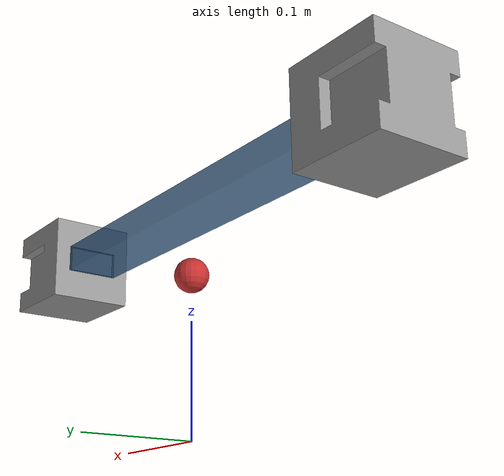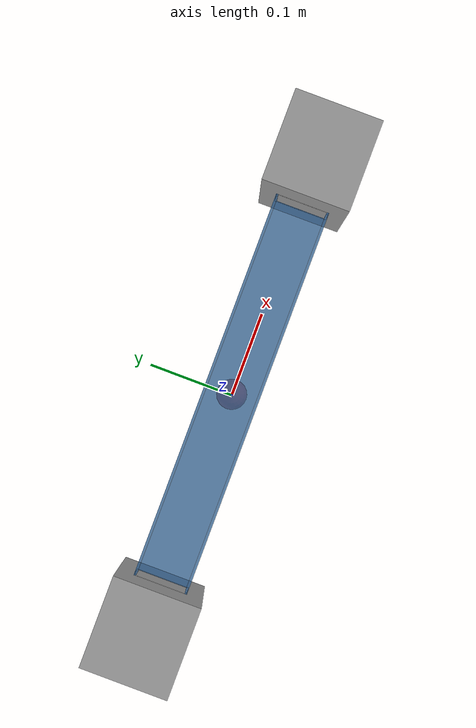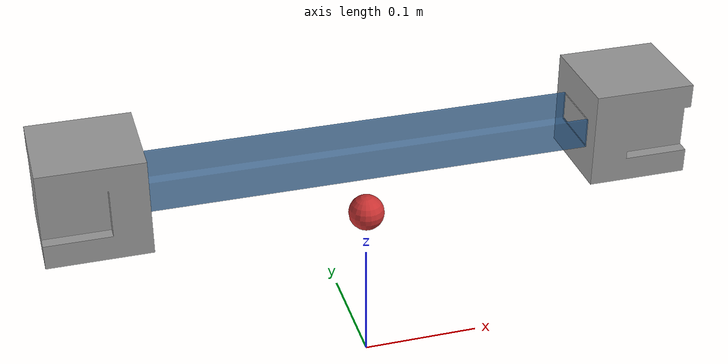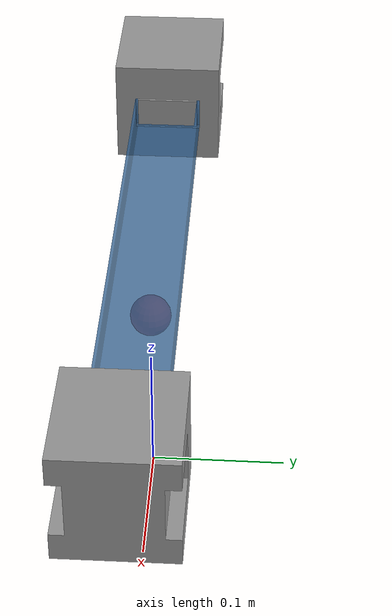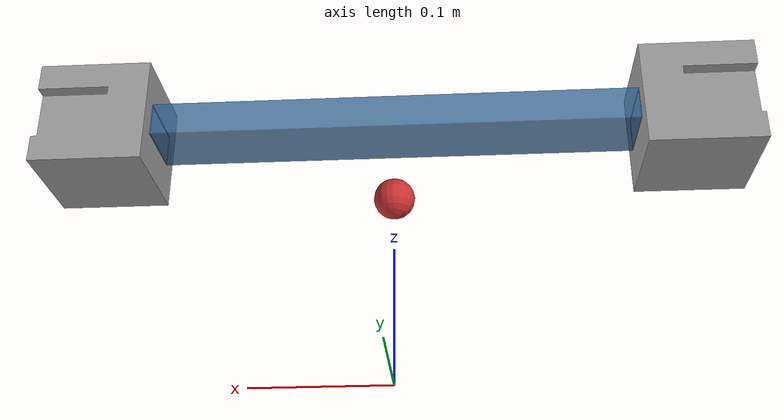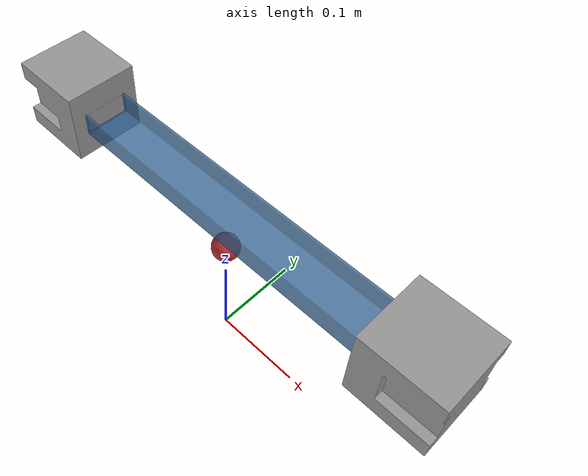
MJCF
<mujoco model="plate_assembly">

  <compiler angle="radian"/>

  <option gravity="0 0 -9.81"/>

  <asset>

    <!-- Materials -->
    <material name="grey" rgba="0.6 0.6 0.6 1"/>
    <material name="plate_mat" rgba="0.2 0.4 0.6 0.8"/>
    <material name="ball_mat" rgba="0.8 0.2 0.2 1"/>

    <!-- Meshes -->
    <mesh name="coupler"
          file="assets/coupler.stl"
          scale="0.001 0.001 0.001"/>

    <mesh name="plate"
          file="assets/plateV2.stl"
          scale="0.001 0.001 0.001"/>

  </asset>

  <worldbody>

    <!-- PLATE ASSEMBLY -->

    <body name="plate_assembly" pos="0 0 0.2">

      <!-- Free Joint -->
      <freejoint name="plate_joint"/>

      <!-- PLATE -->

      <!-- Visual -->
      <geom name="plate_visual"
            type="mesh"
            mesh="plate"
            material="plate_mat"
            pos="-0.225 0 0.0125"
            quat="0.5 0.5 0.5 0.5"
            contype="0"
            conaffinity="0"
            density="0"
            group="2"/>

      <!-- Collision (Decomposed into box primitives so the channel is hollow) -->
      <geom name="plate_bottom_collision"
            type="box"
            size="0.225 0.025 0.001"
            pos="0 0 -0.0115"
            friction="0.05 0.005 0.0001"
            group="3"
            density="1350"/>
      <geom name="plate_left_wall_collision"
            type="box"
            size="0.225 0.001 0.0115"
            pos="0 0.024 0.001"
            friction="0.05 0.005 0.0001"
            group="3"
            density="1350"/>
      <geom name="plate_right_wall_collision"
            type="box"
            size="0.225 0.001 0.0115"
            pos="0 -0.024 0.001"
            friction="0.05 0.005 0.0001"
            group="3"
            density="1350"/>

      <!-- LEFT COUPLER -->

      <body name="left_coupler"
            pos="-0.260 0 0">

        <!-- Visual -->
        <geom name="left_coupler_visual"
              type="mesh"
              mesh="coupler"
              material="grey"
              quat="0.5 0.5 0.5 0.5"
              contype="0"
              conaffinity="0"
              density="0"
              group="2"/>

        <!-- Collision -->
        <geom name="left_coupler_collision"
              type="mesh"
              mesh="coupler"
              quat="0.5 0.5 0.5 0.5"
              density="800"
              friction="1.0 0.005 0.0001"
              contype="1"
              conaffinity="1"
              group="3"/>

      </body>

      <!-- RIGHT COUPLER -->

      <body name="right_coupler"
            pos="0.260 0 0"
            euler="0 0 3.14159">

        <!-- Visual -->
        <geom name="right_coupler_visual"
              type="mesh"
              mesh="coupler"
              material="grey"
              quat="0.5 0.5 0.5 0.5"
              contype="0"
              conaffinity="0"
              density="0"
              group="2"/>

        <!-- Collision -->
        <geom name="right_coupler_collision"
              type="mesh"
              mesh="coupler"
              quat="0.5 0.5 0.5 0.5"
              density="800"
              friction="1.0 0.005 0.0001"
              contype="1"
              conaffinity="1"
              group="3"/>

      </body>

    </body>

    <!-- BALL -->

    <!-- Corrected Ball Position -->
    <body name="ball" pos="0 0 0.14">

      <freejoint name="ball_joint"/>

      <!-- Collision -->
      <geom name="ball_collision"
            type="sphere"
            size="0.015"
            material="ball_mat"
            density="2700"
            friction="0.02 0.005 0.0001"
            contype="1"
            conaffinity="1"
            group="3"/>

      <!-- Visual -->
      <geom name="ball_visual"
            type="sphere"
            size="0.015"
            material="ball_mat"
            contype="0"
            conaffinity="0"
            group="2"/>

    </body>

  </worldbody>

</mujoco>
